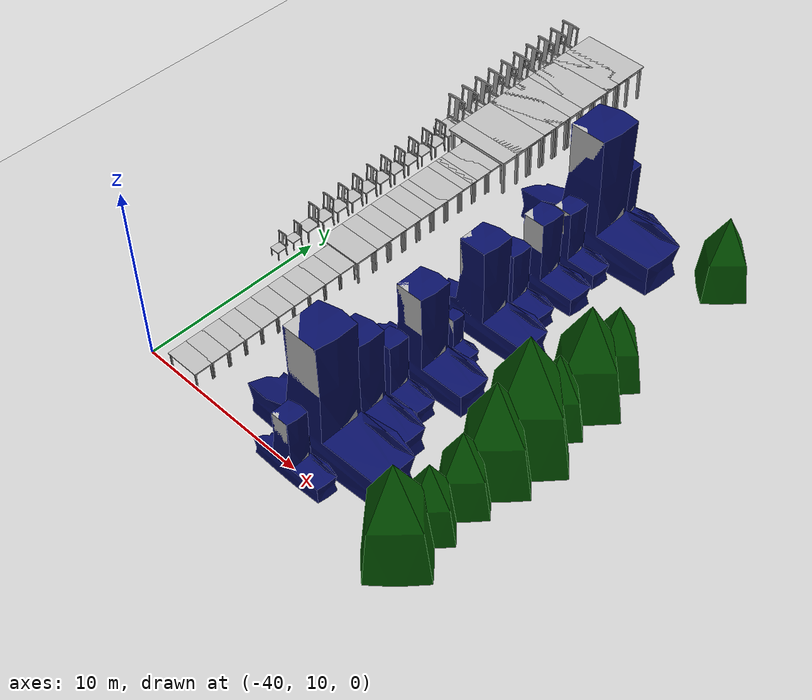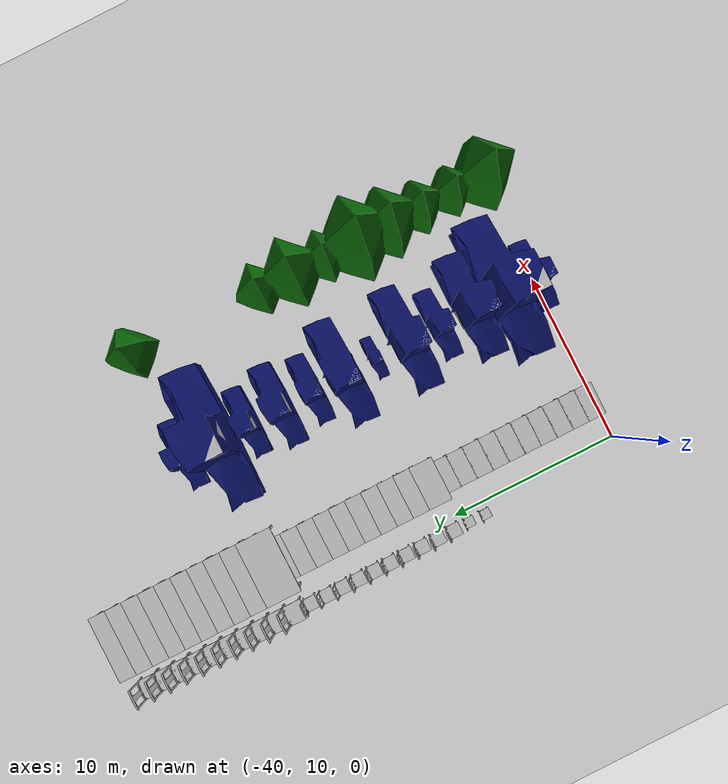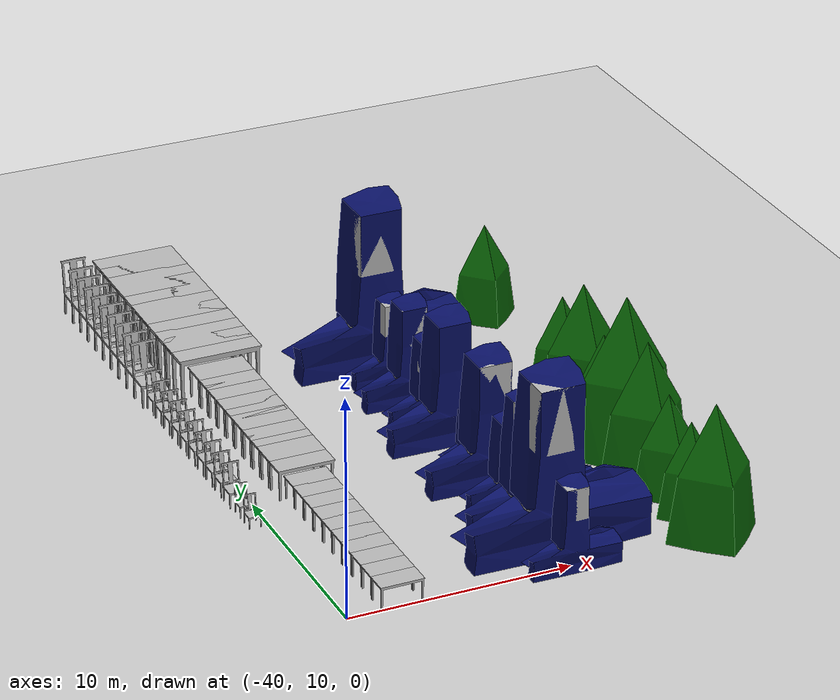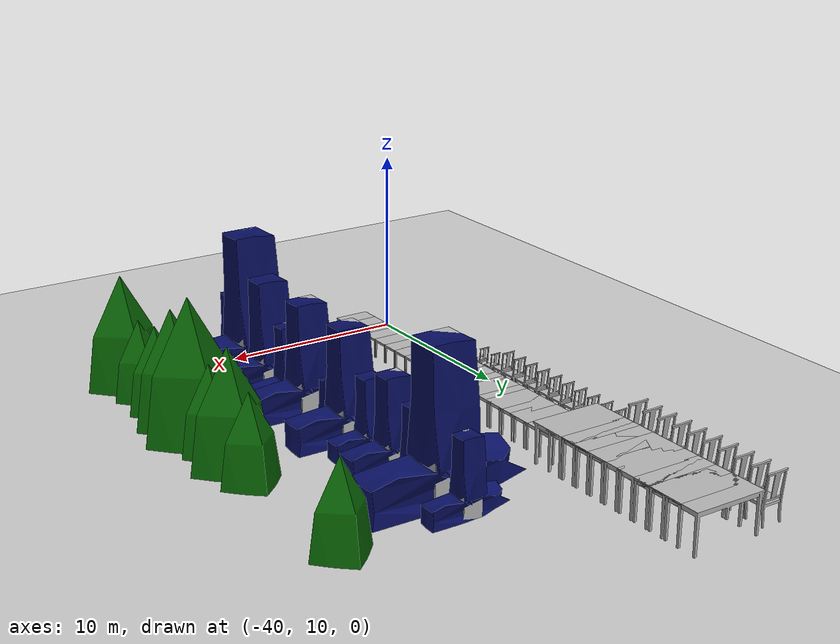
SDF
<sdf version="1.6">
 <world name="default">
  <model name="ground_plane">
   <static>1</static>
   <link name="link">
    <collision name="collision">
     <geometry><plane><normal>0 0 1</normal><size>1000 1000</size></plane></geometry>
     <surface>
      <contact><collide_bitmask>65535</collide_bitmask></contact>
      <friction><ode><mu>100</mu><mu2>50</mu2></ode></friction>
     </surface>
    </collision>
    <visual name="visual">
     <cast_shadows>0</cast_shadows>
     <geometry><plane><normal>0 0 1</normal><size>1000 1000</size></plane></geometry>
     <material>
      <script><uri>file://media/materials/scripts/gazebo.material</uri><name>Gazebo/Grey</name></script>
     </material>
    </visual>
   </link>
  </model>
  <model name="Simple Block_6">
   <pose>-30 22 0 0 -0 0</pose>
   <static>1</static>
   <link name="link">
    <collision name="collision">
     <geometry>
      <mesh><uri>model://Simple Block/meshes/Simple Block.dae</uri><scale>0.75 0.75 0.75</scale></mesh>
     </geometry>
    </collision>
    <visual name="visual">
     <geometry>
      <mesh><uri>model://Simple Block/meshes/Simple Block.dae</uri><scale>0.75 0.75 0.75</scale></mesh>
     </geometry>
    </visual>
   </link>
  </model>
  <model name="Simple Block_0">
   <pose>-30 10 0 0 -0 0</pose>
   <static>1</static>
   <link name="link">
    <collision name="collision">
     <geometry>
      <mesh><uri>model://Simple Block/meshes/Simple Block.dae</uri><scale>0.5 0.5 0.5</scale></mesh>
     </geometry>
    </collision>
    <visual name="visual">
     <geometry>
      <mesh><uri>model://Simple Block/meshes/Simple Block.dae</uri><scale>0.5 0.5 0.5</scale></mesh>
     </geometry>
    </visual>
   </link>
  </model>
  <model name="Simple Block_1">
   <pose>-30 12 0 0 -0 0</pose>
   <static>1</static>
   <link name="link">
    <collision name="collision">
     <geometry><mesh><uri>model://Simple Block/meshes/Simple Block.dae</uri></mesh></geometry>
    </collision>
    <visual name="visual">
     <geometry><mesh><uri>model://Simple Block/meshes/Simple Block.dae</uri></mesh></geometry>
    </visual>
   </link>
  </model>
  <model name="Simple Block_2">
   <pose>-30 14 0 0 -0 0</pose>
   <static>1</static>
   <link name="link">
    <collision name="collision">
     <geometry>
      <mesh><uri>model://Simple Block/meshes/Simple Block.dae</uri><scale>0.75 0.75 0.75</scale></mesh>
     </geometry>
    </collision>
    <visual name="visual">
     <geometry>
      <mesh><uri>model://Simple Block/meshes/Simple Block.dae</uri><scale>0.75 0.75 0.75</scale></mesh>
     </geometry>
    </visual>
   </link>
  </model>
  <model name="Simple Block_3">
   <pose>-30 16 0 0 -0 0</pose>
   <static>1</static>
   <link name="link">
    <collision name="collision">
     <geometry>
      <mesh><uri>model://Simple Block/meshes/Simple Block.dae</uri><scale>0.5 0.5 0.5</scale></mesh>
     </geometry>
    </collision>
    <visual name="visual">
     <geometry>
      <mesh><uri>model://Simple Block/meshes/Simple Block.dae</uri><scale>0.5 0.5 0.5</scale></mesh>
     </geometry>
    </visual>
   </link>
  </model>
  <model name="Simple Block_4">
   <pose>-30 18 0 0 -0 0</pose>
   <static>1</static>
   <link name="link">
    <collision name="collision">
     <geometry>
      <mesh><uri>model://Simple Block/meshes/Simple Block.dae</uri><scale>0.75 0.75 0.75</scale></mesh>
     </geometry>
    </collision>
    <visual name="visual">
     <geometry>
      <mesh><uri>model://Simple Block/meshes/Simple Block.dae</uri><scale>0.75 0.75 0.75</scale></mesh>
     </geometry>
    </visual>
   </link>
  </model>
  <model name="Simple Block_5">
   <pose>-30 20 0 0 -0 0</pose>
   <static>1</static>
   <link name="link">
    <collision name="collision">
     <geometry>
      <mesh><uri>model://Simple Block/meshes/Simple Block.dae</uri><scale>0.3 0.3 0.3</scale></mesh>
     </geometry>
    </collision>
    <visual name="visual">
     <geometry>
      <mesh><uri>model://Simple Block/meshes/Simple Block.dae</uri><scale>0.3 0.3 0.3</scale></mesh>
     </geometry>
    </visual>
   </link>
  </model>
  <model name="Simple Pyramid_11">
   <pose>-23.5 32 0 0 -0 0</pose>
   <static>1</static>
   <link name="link">
    <collision name="collision">
     <geometry>
      <mesh><uri>model://Simple Pyramid/meshes/Simple Pyramid.dae</uri><scale>0.75 0.75 0.75</scale></mesh>
     </geometry>
    </collision>
    <visual name="visual">
     <geometry>
      <mesh><uri>model://Simple Pyramid/meshes/Simple Pyramid.dae</uri><scale>0.75 0.75 0.75</scale></mesh>
     </geometry>
    </visual>
   </link>
  </model>
  <model name="Simple Pyramid_0">
   <pose>-23.5 10 0 0 -0 0</pose>
   <static>1</static>
   <link name="link">
    <collision name="collision">
     <geometry><mesh><uri>model://Simple Pyramid/meshes/Simple Pyramid.dae</uri></mesh></geometry>
    </collision>
    <visual name="visual">
     <geometry><mesh><uri>model://Simple Pyramid/meshes/Simple Pyramid.dae</uri></mesh></geometry>
    </visual>
   </link>
  </model>
  <model name="Simple Pyramid_1">
   <pose>-23.5 12 0 0 -0 0</pose>
   <static>1</static>
   <link name="link">
    <collision name="collision">
     <geometry>
      <mesh><uri>model://Simple Pyramid/meshes/Simple Pyramid.dae</uri><scale>0.7 0.7 0.7</scale></mesh>
     </geometry>
    </collision>
    <visual name="visual">
     <geometry>
      <mesh><uri>model://Simple Pyramid/meshes/Simple Pyramid.dae</uri><scale>0.7 0.7 0.7</scale></mesh>
     </geometry>
    </visual>
   </link>
  </model>
  <model name="Simple Pyramid_2">
   <pose>-23.5 14 0 0 -0 0</pose>
   <static>1</static>
   <link name="link">
    <collision name="collision">
     <geometry>
      <mesh><uri>model://Simple Pyramid/meshes/Simple Pyramid.dae</uri><scale>0.75 0.75 0.75</scale></mesh>
     </geometry>
    </collision>
    <visual name="visual">
     <geometry>
      <mesh><uri>model://Simple Pyramid/meshes/Simple Pyramid.dae</uri><scale>0.75 0.75 0.75</scale></mesh>
     </geometry>
    </visual>
   </link>
  </model>
  <model name="Simple Pyramid_3">
   <pose>-23.5 16 0 0 -0 0</pose>
   <static>1</static>
   <link name="link">
    <collision name="collision">
     <geometry><mesh><uri>model://Simple Pyramid/meshes/Simple Pyramid.dae</uri></mesh></geometry>
    </collision>
    <visual name="visual">
     <geometry><mesh><uri>model://Simple Pyramid/meshes/Simple Pyramid.dae</uri></mesh></geometry>
    </visual>
   </link>
  </model>
  <model name="Simple Pyramid_4">
   <pose>-23.5 18 0 0 -0 0</pose>
   <static>1</static>
   <link name="link">
    <collision name="collision">
     <geometry>
      <mesh><uri>model://Simple Pyramid/meshes/Simple Pyramid.dae</uri><scale>1.2 1.2 1.2</scale></mesh>
     </geometry>
    </collision>
    <visual name="visual">
     <geometry>
      <mesh><uri>model://Simple Pyramid/meshes/Simple Pyramid.dae</uri><scale>1.2 1.2 1.2</scale></mesh>
     </geometry>
    </visual>
   </link>
  </model>
  <model name="Simple Pyramid_5">
   <pose>-23.5 20 0 0 -0 0</pose>
   <static>1</static>
   <link name="link">
    <collision name="collision">
     <geometry>
      <mesh><uri>model://Simple Pyramid/meshes/Simple Pyramid.dae</uri><scale>0.75 0.75 0.75</scale></mesh>
     </geometry>
    </collision>
    <visual name="visual">
     <geometry>
      <mesh><uri>model://Simple Pyramid/meshes/Simple Pyramid.dae</uri><scale>0.75 0.75 0.75</scale></mesh>
     </geometry>
    </visual>
   </link>
  </model>
  <model name="Simple Pyramid_6">
   <pose>-23.5 22 0 0 -0 0</pose>
   <static>1</static>
   <link name="link">
    <collision name="collision">
     <geometry><mesh><uri>model://Simple Pyramid/meshes/Simple Pyramid.dae</uri></mesh></geometry>
    </collision>
    <visual name="visual">
     <geometry><mesh><uri>model://Simple Pyramid/meshes/Simple Pyramid.dae</uri></mesh></geometry>
    </visual>
   </link>
  </model>
  <model name="Simple Pyramid_7">
   <pose>-23.5 24 0 0 -0 0</pose>
   <static>1</static>
   <link name="link">
    <collision name="collision">
     <geometry>
      <mesh><uri>model://Simple Pyramid/meshes/Simple Pyramid.dae</uri><scale>0.75 0.75 0.75</scale></mesh>
     </geometry>
    </collision>
    <visual name="visual">
     <geometry>
      <mesh><uri>model://Simple Pyramid/meshes/Simple Pyramid.dae</uri><scale>0.75 0.75 0.75</scale></mesh>
     </geometry>
    </visual>
   </link>
  </model>
  <model name="Simple Block_11">
   <pose>-30 32 0 0 -0 0</pose>
   <static>1</static>
   <link name="link">
    <collision name="collision">
     <geometry>
      <mesh><uri>model://Simple Block/meshes/Simple Block.dae</uri><scale>0.5 0.5 0.5</scale></mesh>
     </geometry>
    </collision>
    <visual name="visual">
     <geometry>
      <mesh><uri>model://Simple Block/meshes/Simple Block.dae</uri><scale>0.5 0.5 0.5</scale></mesh>
     </geometry>
    </visual>
   </link>
  </model>
  <model name="Simple Block_7">
   <pose>-30 24 0 0 -0 0</pose>
   <static>1</static>
   <link name="link">
    <collision name="collision">
     <geometry>
      <mesh><uri>model://Simple Block/meshes/Simple Block.dae</uri><scale>0.5 0.5 0.5</scale></mesh>
     </geometry>
    </collision>
    <visual name="visual">
     <geometry>
      <mesh><uri>model://Simple Block/meshes/Simple Block.dae</uri><scale>0.5 0.5 0.5</scale></mesh>
     </geometry>
    </visual>
   </link>
  </model>
  <model name="Simple Block_8">
   <pose>-30 26 0 0 -0 0</pose>
   <static>1</static>
   <link name="link">
    <collision name="collision">
     <geometry>
      <mesh><uri>model://Simple Block/meshes/Simple Block.dae</uri><scale>0.6 0.6 0.6</scale></mesh>
     </geometry>
    </collision>
    <visual name="visual">
     <geometry>
      <mesh><uri>model://Simple Block/meshes/Simple Block.dae</uri><scale>0.6 0.6 0.6</scale></mesh>
     </geometry>
    </visual>
   </link>
  </model>
  <model name="Simple Block_9">
   <pose>-30 28 0 0 -0 0</pose>
   <static>1</static>
   <link name="link">
    <collision name="collision">
     <geometry>
      <mesh><uri>model://Simple Block/meshes/Simple Block.dae</uri><scale>0.5 0.5 0.5</scale></mesh>
     </geometry>
    </collision>
    <visual name="visual">
     <geometry>
      <mesh><uri>model://Simple Block/meshes/Simple Block.dae</uri><scale>0.5 0.5 0.5</scale></mesh>
     </geometry>
    </visual>
   </link>
  </model>
  <model name="Simple Block_10">
   <pose>-30 30 0 0 -0 0</pose>
   <static>1</static>
   <link name="link">
    <collision name="collision">
     <geometry><mesh><uri>model://Simple Block/meshes/Simple Block.dae</uri></mesh></geometry>
    </collision>
    <visual name="visual">
     <geometry><mesh><uri>model://Simple Block/meshes/Simple Block.dae</uri></mesh></geometry>
    </visual>
   </link>
  </model>
  <model name="table_low_poly_0">
   <static>1</static>
   <link name="link">
    <inertial>
     <mass>100</mass>
     <inertia><ixx>100</ixx><ixy>0</ixy><ixz>0</ixz><iyy>100</iyy><iyz>0</iyz><izz>100</izz></inertia>
    </inertial>
    <collision name="collision">
     <geometry><mesh><uri>model://table_low_poly/meshes/table.dae</uri><scale>1.5 1.5 1.5</scale></mesh></geometry>
    </collision>
    <visual name="visual">
     <geometry><mesh><uri>model://table_low_poly/meshes/table.dae</uri><scale>1.5 1.5 1.5</scale></mesh></geometry>
    </visual>
   </link>
   <pose>-37.5795 10.4619 0 0 -0 0</pose>
  </model>
  <model name="table_low_poly_1">
   <static>1</static>
   <link name="link">
    <inertial>
     <mass>100</mass>
     <inertia><ixx>100</ixx><ixy>0</ixy><ixz>0</ixz><iyy>100</iyy><iyz>0</iyz><izz>100</izz></inertia>
    </inertial>
    <collision name="collision">
     <geometry><mesh><uri>model://table_low_poly/meshes/table.dae</uri><scale>1.5 1.5 1.5</scale></mesh></geometry>
    </collision>
    <visual name="visual">
     <geometry><mesh><uri>model://table_low_poly/meshes/table.dae</uri><scale>1.5 1.5 1.5</scale></mesh></geometry>
    </visual>
   </link>
   <pose>-37.5795 11.4619 0 0 -0 0</pose>
  </model>
  <model name="table_low_poly_2">
   <static>1</static>
   <link name="link">
    <inertial>
     <mass>100</mass>
     <inertia><ixx>100</ixx><ixy>0</ixy><ixz>0</ixz><iyy>100</iyy><iyz>0</iyz><izz>100</izz></inertia>
    </inertial>
    <collision name="collision">
     <geometry><mesh><uri>model://table_low_poly/meshes/table.dae</uri><scale>1.5 1.5 1.5</scale></mesh></geometry>
    </collision>
    <visual name="visual">
     <geometry><mesh><uri>model://table_low_poly/meshes/table.dae</uri><scale>1.5 1.5 1.5</scale></mesh></geometry>
    </visual>
   </link>
   <pose>-37.5795 12.4619 0 0 -0 0</pose>
  </model>
  <model name="table_low_poly_3">
   <static>1</static>
   <link name="link">
    <inertial>
     <mass>100</mass>
     <inertia><ixx>100</ixx><ixy>0</ixy><ixz>0</ixz><iyy>100</iyy><iyz>0</iyz><izz>100</izz></inertia>
    </inertial>
    <collision name="collision">
     <geometry><mesh><uri>model://table_low_poly/meshes/table.dae</uri><scale>1.5 1.5 1.5</scale></mesh></geometry>
    </collision>
    <visual name="visual">
     <geometry><mesh><uri>model://table_low_poly/meshes/table.dae</uri><scale>1.5 1.5 1.5</scale></mesh></geometry>
    </visual>
   </link>
   <pose>-37.5795 13.4619 0 0 -0 0</pose>
  </model>
  <model name="table_low_poly_4">
   <static>1</static>
   <link name="link">
    <inertial>
     <mass>100</mass>
     <inertia><ixx>100</ixx><ixy>0</ixy><ixz>0</ixz><iyy>100</iyy><iyz>0</iyz><izz>100</izz></inertia>
    </inertial>
    <collision name="collision">
     <geometry><mesh><uri>model://table_low_poly/meshes/table.dae</uri><scale>1.5 1.5 1.5</scale></mesh></geometry>
    </collision>
    <visual name="visual">
     <geometry><mesh><uri>model://table_low_poly/meshes/table.dae</uri><scale>1.5 1.5 1.5</scale></mesh></geometry>
    </visual>
   </link>
   <pose>-37.5795 14.4619 0 0 -0 0</pose>
  </model>
  <model name="table_low_poly_5">
   <static>1</static>
   <link name="link">
    <inertial>
     <mass>100</mass>
     <inertia><ixx>100</ixx><ixy>0</ixy><ixz>0</ixz><iyy>100</iyy><iyz>0</iyz><izz>100</izz></inertia>
    </inertial>
    <collision name="collision">
     <geometry><mesh><uri>model://table_low_poly/meshes/table.dae</uri><scale>1.5 1.5 1.5</scale></mesh></geometry>
    </collision>
    <visual name="visual">
     <geometry><mesh><uri>model://table_low_poly/meshes/table.dae</uri><scale>1.5 1.5 1.5</scale></mesh></geometry>
    </visual>
   </link>
   <pose>-37.5795 15.4619 0 0 -0 0</pose>
  </model>
  <model name="table_low_poly_6">
   <static>1</static>
   <link name="link">
    <inertial>
     <mass>100</mass>
     <inertia><ixx>100</ixx><ixy>0</ixy><ixz>0</ixz><iyy>100</iyy><iyz>0</iyz><izz>100</izz></inertia>
    </inertial>
    <collision name="collision">
     <geometry><mesh><uri>model://table_low_poly/meshes/table.dae</uri><scale>1.5 1.5 1.5</scale></mesh></geometry>
    </collision>
    <visual name="visual">
     <geometry><mesh><uri>model://table_low_poly/meshes/table.dae</uri><scale>1.5 1.5 1.5</scale></mesh></geometry>
    </visual>
   </link>
   <pose>-37.5795 16.4619 0 0 -0 0</pose>
  </model>
  <model name="table_low_poly_7">
   <static>1</static>
   <link name="link">
    <inertial>
     <mass>100</mass>
     <inertia><ixx>100</ixx><ixy>0</ixy><ixz>0</ixz><iyy>100</iyy><iyz>0</iyz><izz>100</izz></inertia>
    </inertial>
    <collision name="collision">
     <geometry><mesh><uri>model://table_low_poly/meshes/table.dae</uri><scale>1.5 1.5 1.5</scale></mesh></geometry>
    </collision>
    <visual name="visual">
     <geometry><mesh><uri>model://table_low_poly/meshes/table.dae</uri><scale>1.5 1.5 1.5</scale></mesh></geometry>
    </visual>
   </link>
   <pose>-37.5795 17.4619 0 0 -0 0</pose>
  </model>
  <model name="table_low_poly_8">
   <static>1</static>
   <link name="link">
    <inertial>
     <mass>100</mass>
     <inertia><ixx>100</ixx><ixy>0</ixy><ixz>0</ixz><iyy>100</iyy><iyz>0</iyz><izz>100</izz></inertia>
    </inertial>
    <collision name="collision">
     <geometry><mesh><uri>model://table_low_poly/meshes/table.dae</uri><scale>1.5 1.5 1.5</scale></mesh></geometry>
    </collision>
    <visual name="visual">
     <geometry><mesh><uri>model://table_low_poly/meshes/table.dae</uri><scale>1.5 1.5 1.5</scale></mesh></geometry>
    </visual>
   </link>
   <pose>-37.5795 18.4619 0 0 -0 0</pose>
  </model>
  <model name="table_low_poly_9">
   <static>1</static>
   <link name="link">
    <inertial>
     <mass>100</mass>
     <inertia><ixx>100</ixx><ixy>0</ixy><ixz>0</ixz><iyy>100</iyy><iyz>0</iyz><izz>100</izz></inertia>
    </inertial>
    <collision name="collision">
     <geometry><mesh><uri>model://table_low_poly/meshes/table.dae</uri><scale>1.5 1.5 1.5</scale></mesh></geometry>
    </collision>
    <visual name="visual">
     <geometry><mesh><uri>model://table_low_poly/meshes/table.dae</uri><scale>1.5 1.5 1.5</scale></mesh></geometry>
    </visual>
   </link>
   <pose>-37.5795 19.4619 0 0 -0 0</pose>
  </model>
  <model name="table_low_poly_10">
   <static>1</static>
   <link name="link">
    <inertial>
     <mass>100</mass>
     <inertia><ixx>100</ixx><ixy>0</ixy><ixz>0</ixz><iyy>100</iyy><iyz>0</iyz><izz>100</izz></inertia>
    </inertial>
    <collision name="collision">
     <geometry><mesh><uri>model://table_low_poly/meshes/table.dae</uri><scale>2 2 2</scale></mesh></geometry>
    </collision>
    <visual name="visual">
     <geometry><mesh><uri>model://table_low_poly/meshes/table.dae</uri><scale>2 2 2</scale></mesh></geometry>
    </visual>
   </link>
   <pose>-37.5795 20.4619 0 0 -0 0</pose>
  </model>
  <model name="table_low_poly_11">
   <static>1</static>
   <link name="link">
    <inertial>
     <mass>100</mass>
     <inertia><ixx>100</ixx><ixy>0</ixy><ixz>0</ixz><iyy>100</iyy><iyz>0</iyz><izz>100</izz></inertia>
    </inertial>
    <collision name="collision">
     <geometry><mesh><uri>model://table_low_poly/meshes/table.dae</uri><scale>2 2 2</scale></mesh></geometry>
    </collision>
    <visual name="visual">
     <geometry><mesh><uri>model://table_low_poly/meshes/table.dae</uri><scale>2 2 2</scale></mesh></geometry>
    </visual>
   </link>
   <pose>-37.5795 21.4619 0 0 -0 0</pose>
  </model>
  <model name="table_low_poly_12">
   <static>1</static>
   <link name="link">
    <inertial>
     <mass>100</mass>
     <inertia><ixx>100</ixx><ixy>0</ixy><ixz>0</ixz><iyy>100</iyy><iyz>0</iyz><izz>100</izz></inertia>
    </inertial>
    <collision name="collision">
     <geometry><mesh><uri>model://table_low_poly/meshes/table.dae</uri><scale>2 2 2</scale></mesh></geometry>
    </collision>
    <visual name="visual">
     <geometry><mesh><uri>model://table_low_poly/meshes/table.dae</uri><scale>2 2 2</scale></mesh></geometry>
    </visual>
   </link>
   <pose>-37.5795 22.4619 0 0 -0 0</pose>
  </model>
  <model name="table_low_poly_13">
   <static>1</static>
   <link name="link">
    <inertial>
     <mass>100</mass>
     <inertia><ixx>100</ixx><ixy>0</ixy><ixz>0</ixz><iyy>100</iyy><iyz>0</iyz><izz>100</izz></inertia>
    </inertial>
    <collision name="collision">
     <geometry><mesh><uri>model://table_low_poly/meshes/table.dae</uri><scale>2 2 2</scale></mesh></geometry>
    </collision>
    <visual name="visual">
     <geometry><mesh><uri>model://table_low_poly/meshes/table.dae</uri><scale>2 2 2</scale></mesh></geometry>
    </visual>
   </link>
   <pose>-37.5795 23.4619 0 0 -0 0</pose>
  </model>
  <model name="table_low_poly_14">
   <static>1</static>
   <link name="link">
    <inertial>
     <mass>100</mass>
     <inertia><ixx>100</ixx><ixy>0</ixy><ixz>0</ixz><iyy>100</iyy><iyz>0</iyz><izz>100</izz></inertia>
    </inertial>
    <collision name="collision">
     <geometry><mesh><uri>model://table_low_poly/meshes/table.dae</uri><scale>2 2 2</scale></mesh></geometry>
    </collision>
    <visual name="visual">
     <geometry><mesh><uri>model://table_low_poly/meshes/table.dae</uri><scale>2 2 2</scale></mesh></geometry>
    </visual>
   </link>
   <pose>-37.5795 24.4619 0 0 -0 0</pose>
  </model>
  <model name="table_low_poly_15">
   <static>1</static>
   <link name="link">
    <inertial>
     <mass>100</mass>
     <inertia><ixx>100</ixx><ixy>0</ixy><ixz>0</ixz><iyy>100</iyy><iyz>0</iyz><izz>100</izz></inertia>
    </inertial>
    <collision name="collision">
     <geometry><mesh><uri>model://table_low_poly/meshes/table.dae</uri><scale>2 2 2</scale></mesh></geometry>
    </collision>
    <visual name="visual">
     <geometry><mesh><uri>model://table_low_poly/meshes/table.dae</uri><scale>2 2 2</scale></mesh></geometry>
    </visual>
   </link>
   <pose>-37.5795 25.4619 0 0 -0 0</pose>
  </model>
  <model name="table_low_poly_16">
   <static>1</static>
   <link name="link">
    <inertial>
     <mass>100</mass>
     <inertia><ixx>100</ixx><ixy>0</ixy><ixz>0</ixz><iyy>100</iyy><iyz>0</iyz><izz>100</izz></inertia>
    </inertial>
    <collision name="collision">
     <geometry><mesh><uri>model://table_low_poly/meshes/table.dae</uri><scale>2 2 2</scale></mesh></geometry>
    </collision>
    <visual name="visual">
     <geometry><mesh><uri>model://table_low_poly/meshes/table.dae</uri><scale>2 2 2</scale></mesh></geometry>
    </visual>
   </link>
   <pose>-37.5795 26.4619 0 0 -0 0</pose>
  </model>
  <model name="table_low_poly_17">
   <static>1</static>
   <link name="link">
    <inertial>
     <mass>100</mass>
     <inertia><ixx>100</ixx><ixy>0</ixy><ixz>0</ixz><iyy>100</iyy><iyz>0</iyz><izz>100</izz></inertia>
    </inertial>
    <collision name="collision">
     <geometry><mesh><uri>model://table_low_poly/meshes/table.dae</uri><scale>2 2 2</scale></mesh></geometry>
    </collision>
    <visual name="visual">
     <geometry><mesh><uri>model://table_low_poly/meshes/table.dae</uri><scale>2 2 2</scale></mesh></geometry>
    </visual>
   </link>
   <pose>-37.5795 27.4619 0 0 -0 0</pose>
  </model>
  <model name="table_low_poly_18">
   <static>1</static>
   <link name="link">
    <inertial>
     <mass>100</mass>
     <inertia><ixx>100</ixx><ixy>0</ixy><ixz>0</ixz><iyy>100</iyy><iyz>0</iyz><izz>100</izz></inertia>
    </inertial>
    <collision name="collision">
     <geometry><mesh><uri>model://table_low_poly/meshes/table.dae</uri><scale>2 2 2</scale></mesh></geometry>
    </collision>
    <visual name="visual">
     <geometry><mesh><uri>model://table_low_poly/meshes/table.dae</uri><scale>2 2 2</scale></mesh></geometry>
    </visual>
   </link>
   <pose>-37.5795 28.4619 0 0 -0 0</pose>
  </model>
  <model name="table_low_poly_19">
   <static>1</static>
   <link name="link">
    <inertial>
     <mass>100</mass>
     <inertia><ixx>100</ixx><ixy>0</ixy><ixz>0</ixz><iyy>100</iyy><iyz>0</iyz><izz>100</izz></inertia>
    </inertial>
    <collision name="collision">
     <geometry><mesh><uri>model://table_low_poly/meshes/table.dae</uri><scale>2 2 2</scale></mesh></geometry>
    </collision>
    <visual name="visual">
     <geometry><mesh><uri>model://table_low_poly/meshes/table.dae</uri><scale>2 2 2</scale></mesh></geometry>
    </visual>
   </link>
   <pose>-37.5795 29.4619 0 0 -0 0</pose>
  </model>
  <model name="table_low_poly_20">
   <static>1</static>
   <link name="link">
    <inertial>
     <mass>100</mass>
     <inertia><ixx>100</ixx><ixy>0</ixy><ixz>0</ixz><iyy>100</iyy><iyz>0</iyz><izz>100</izz></inertia>
    </inertial>
    <collision name="collision">
     <geometry><mesh><uri>model://table_low_poly/meshes/table.dae</uri><scale>3 3 3</scale></mesh></geometry>
    </collision>
    <visual name="visual">
     <geometry><mesh><uri>model://table_low_poly/meshes/table.dae</uri><scale>3 3 3</scale></mesh></geometry>
    </visual>
   </link>
   <pose>-37.5795 30.4619 0 0 -0 0</pose>
  </model>
  <model name="table_low_poly_21">
   <static>1</static>
   <link name="link">
    <inertial>
     <mass>100</mass>
     <inertia><ixx>100</ixx><ixy>0</ixy><ixz>0</ixz><iyy>100</iyy><iyz>0</iyz><izz>100</izz></inertia>
    </inertial>
    <collision name="collision">
     <geometry><mesh><uri>model://table_low_poly/meshes/table.dae</uri><scale>3 3 3</scale></mesh></geometry>
    </collision>
    <visual name="visual">
     <geometry><mesh><uri>model://table_low_poly/meshes/table.dae</uri><scale>3 3 3</scale></mesh></geometry>
    </visual>
   </link>
   <pose>-37.5795 31.4619 0 0 -0 0</pose>
  </model>
  <model name="table_low_poly_22">
   <static>1</static>
   <link name="link">
    <inertial>
     <mass>100</mass>
     <inertia><ixx>100</ixx><ixy>0</ixy><ixz>0</ixz><iyy>100</iyy><iyz>0</iyz><izz>100</izz></inertia>
    </inertial>
    <collision name="collision">
     <geometry><mesh><uri>model://table_low_poly/meshes/table.dae</uri><scale>3 3 3</scale></mesh></geometry>
    </collision>
    <visual name="visual">
     <geometry><mesh><uri>model://table_low_poly/meshes/table.dae</uri><scale>3 3 3</scale></mesh></geometry>
    </visual>
   </link>
   <pose>-37.5795 32.4619 0 0 -0 0</pose>
  </model>
  <model name="table_low_poly_23">
   <static>1</static>
   <link name="link">
    <inertial>
     <mass>100</mass>
     <inertia><ixx>100</ixx><ixy>0</ixy><ixz>0</ixz><iyy>100</iyy><iyz>0</iyz><izz>100</izz></inertia>
    </inertial>
    <collision name="collision">
     <geometry><mesh><uri>model://table_low_poly/meshes/table.dae</uri><scale>3 3 3</scale></mesh></geometry>
    </collision>
    <visual name="visual">
     <geometry><mesh><uri>model://table_low_poly/meshes/table.dae</uri><scale>3 3 3</scale></mesh></geometry>
    </visual>
   </link>
   <pose>-37.5795 33.4619 0 0 -0 0</pose>
  </model>
  <model name="table_low_poly_24">
   <static>1</static>
   <link name="link">
    <inertial>
     <mass>100</mass>
     <inertia><ixx>100</ixx><ixy>0</ixy><ixz>0</ixz><iyy>100</iyy><iyz>0</iyz><izz>100</izz></inertia>
    </inertial>
    <collision name="collision">
     <geometry><mesh><uri>model://table_low_poly/meshes/table.dae</uri><scale>3 3 3</scale></mesh></geometry>
    </collision>
    <visual name="visual">
     <geometry><mesh><uri>model://table_low_poly/meshes/table.dae</uri><scale>3 3 3</scale></mesh></geometry>
    </visual>
   </link>
   <pose>-37.5795 34.4619 0 0 -0 0</pose>
  </model>
  <model name="table_low_poly_25">
   <static>1</static>
   <link name="link">
    <inertial>
     <mass>100</mass>
     <inertia><ixx>100</ixx><ixy>0</ixy><ixz>0</ixz><iyy>100</iyy><iyz>0</iyz><izz>100</izz></inertia>
    </inertial>
    <collision name="collision">
     <geometry><mesh><uri>model://table_low_poly/meshes/table.dae</uri><scale>3 3 3</scale></mesh></geometry>
    </collision>
    <visual name="visual">
     <geometry><mesh><uri>model://table_low_poly/meshes/table.dae</uri><scale>3 3 3</scale></mesh></geometry>
    </visual>
   </link>
   <pose>-37.5795 35.4619 0 0 -0 0</pose>
  </model>
  <model name="table_low_poly_26">
   <static>1</static>
   <link name="link">
    <inertial>
     <mass>100</mass>
     <inertia><ixx>100</ixx><ixy>0</ixy><ixz>0</ixz><iyy>100</iyy><iyz>0</iyz><izz>100</izz></inertia>
    </inertial>
    <collision name="collision">
     <geometry><mesh><uri>model://table_low_poly/meshes/table.dae</uri><scale>3 3 3</scale></mesh></geometry>
    </collision>
    <visual name="visual">
     <geometry><mesh><uri>model://table_low_poly/meshes/table.dae</uri><scale>3 3 3</scale></mesh></geometry>
    </visual>
   </link>
   <pose>-37.5795 36.4619 0 0 -0 0</pose>
  </model>
  <model name="table_low_poly_27">
   <static>1</static>
   <link name="link">
    <inertial>
     <mass>100</mass>
     <inertia><ixx>100</ixx><ixy>0</ixy><ixz>0</ixz><iyy>100</iyy><iyz>0</iyz><izz>100</izz></inertia>
    </inertial>
    <collision name="collision">
     <geometry><mesh><uri>model://table_low_poly/meshes/table.dae</uri><scale>3 3 3</scale></mesh></geometry>
    </collision>
    <visual name="visual">
     <geometry><mesh><uri>model://table_low_poly/meshes/table.dae</uri><scale>3 3 3</scale></mesh></geometry>
    </visual>
   </link>
   <pose>-37.5795 37.4619 0 0 -0 0</pose>
  </model>
  <model name="table_low_poly_28">
   <static>1</static>
   <link name="link">
    <inertial>
     <mass>100</mass>
     <inertia><ixx>100</ixx><ixy>0</ixy><ixz>0</ixz><iyy>100</iyy><iyz>0</iyz><izz>100</izz></inertia>
    </inertial>
    <collision name="collision">
     <geometry><mesh><uri>model://table_low_poly/meshes/table.dae</uri><scale>3 3 3</scale></mesh></geometry>
    </collision>
    <visual name="visual">
     <geometry><mesh><uri>model://table_low_poly/meshes/table.dae</uri><scale>3 3 3</scale></mesh></geometry>
    </visual>
   </link>
   <pose>-37.5795 38.4619 0 0 -0 0</pose>
  </model>
  <model name="table_low_poly_29">
   <static>1</static>
   <link name="link">
    <inertial>
     <mass>100</mass>
     <inertia><ixx>100</ixx><ixy>0</ixy><ixz>0</ixz><iyy>100</iyy><iyz>0</iyz><izz>100</izz></inertia>
    </inertial>
    <collision name="collision">
     <geometry><mesh><uri>model://table_low_poly/meshes/table.dae</uri><scale>3 3 3</scale></mesh></geometry>
    </collision>
    <visual name="visual">
     <geometry><mesh><uri>model://table_low_poly/meshes/table.dae</uri><scale>3 3 3</scale></mesh></geometry>
    </visual>
   </link>
   <pose>-37.5795 39.4619 0 0 -0 0</pose>
  </model>
  <model name="chair_8">
   <static>1</static>
   <link name="link">
    <inertial>
     <mass>100</mass>
     <inertia><ixx>100</ixx><ixy>0</ixy><ixz>0</ixz><iyy>100</iyy><iyz>0</iyz><izz>100</izz></inertia>
    </inertial>
    <collision name="collision">
     <geometry><mesh><uri>model://chair/meshes/chair.dae</uri><scale>1.5 1.5 1.5</scale></mesh></geometry>
    </collision>
    <visual name="visual">
     <geometry><mesh><uri>model://chair/meshes/chair.dae</uri><scale>1.5 1.5 1.5</scale></mesh></geometry>
    </visual>
   </link>
   <pose>-40.6067 18.4313 0 0 -0 0</pose>
  </model>
  <model name="chair_9">
   <static>1</static>
   <link name="link">
    <inertial>
     <mass>100</mass>
     <inertia><ixx>100</ixx><ixy>0</ixy><ixz>0</ixz><iyy>100</iyy><iyz>0</iyz><izz>100</izz></inertia>
    </inertial>
    <collision name="collision">
     <geometry><mesh><uri>model://chair/meshes/chair.dae</uri><scale>1.5 1.5 1.5</scale></mesh></geometry>
    </collision>
    <visual name="visual">
     <geometry><mesh><uri>model://chair/meshes/chair.dae</uri><scale>1.5 1.5 1.5</scale></mesh></geometry>
    </visual>
   </link>
   <pose>-40.6067 19.4313 0 0 -0 0</pose>
  </model>
  <model name="chair_10">
   <static>1</static>
   <link name="link">
    <inertial>
     <mass>100</mass>
     <inertia><ixx>100</ixx><ixy>0</ixy><ixz>0</ixz><iyy>100</iyy><iyz>0</iyz><izz>100</izz></inertia>
    </inertial>
    <collision name="collision">
     <geometry><mesh><uri>model://chair/meshes/chair.dae</uri><scale>2 2 2</scale></mesh></geometry>
    </collision>
    <visual name="visual">
     <geometry><mesh><uri>model://chair/meshes/chair.dae</uri><scale>2 2 2</scale></mesh></geometry>
    </visual>
   </link>
   <pose>-40.6067 20.4313 0 0 -0 0</pose>
  </model>
  <model name="chair_11">
   <static>1</static>
   <link name="link">
    <inertial>
     <mass>100</mass>
     <inertia><ixx>100</ixx><ixy>0</ixy><ixz>0</ixz><iyy>100</iyy><iyz>0</iyz><izz>100</izz></inertia>
    </inertial>
    <collision name="collision">
     <geometry><mesh><uri>model://chair/meshes/chair.dae</uri><scale>2 2 2</scale></mesh></geometry>
    </collision>
    <visual name="visual">
     <geometry><mesh><uri>model://chair/meshes/chair.dae</uri><scale>2 2 2</scale></mesh></geometry>
    </visual>
   </link>
   <pose>-40.6067 21.4313 0 0 -0 0</pose>
  </model>
  <model name="chair_12">
   <static>1</static>
   <link name="link">
    <inertial>
     <mass>100</mass>
     <inertia><ixx>100</ixx><ixy>0</ixy><ixz>0</ixz><iyy>100</iyy><iyz>0</iyz><izz>100</izz></inertia>
    </inertial>
    <collision name="collision">
     <geometry><mesh><uri>model://chair/meshes/chair.dae</uri><scale>2 2 2</scale></mesh></geometry>
    </collision>
    <visual name="visual">
     <geometry><mesh><uri>model://chair/meshes/chair.dae</uri><scale>2 2 2</scale></mesh></geometry>
    </visual>
   </link>
   <pose>-40.6067 22.4313 0 0 -0 0</pose>
  </model>
  <model name="chair_13">
   <static>1</static>
   <link name="link">
    <inertial>
     <mass>100</mass>
     <inertia><ixx>100</ixx><ixy>0</ixy><ixz>0</ixz><iyy>100</iyy><iyz>0</iyz><izz>100</izz></inertia>
    </inertial>
    <collision name="collision">
     <geometry><mesh><uri>model://chair/meshes/chair.dae</uri><scale>2 2 2</scale></mesh></geometry>
    </collision>
    <visual name="visual">
     <geometry><mesh><uri>model://chair/meshes/chair.dae</uri><scale>2 2 2</scale></mesh></geometry>
    </visual>
   </link>
   <pose>-40.6067 23.4313 0 0 -0 0</pose>
  </model>
  <model name="chair_14">
   <static>1</static>
   <link name="link">
    <inertial>
     <mass>100</mass>
     <inertia><ixx>100</ixx><ixy>0</ixy><ixz>0</ixz><iyy>100</iyy><iyz>0</iyz><izz>100</izz></inertia>
    </inertial>
    <collision name="collision">
     <geometry><mesh><uri>model://chair/meshes/chair.dae</uri><scale>2 2 2</scale></mesh></geometry>
    </collision>
    <visual name="visual">
     <geometry><mesh><uri>model://chair/meshes/chair.dae</uri><scale>2 2 2</scale></mesh></geometry>
    </visual>
   </link>
   <pose>-40.6067 24.4313 0 0 -0 0</pose>
  </model>
  <model name="chair_15">
   <static>1</static>
   <link name="link">
    <inertial>
     <mass>100</mass>
     <inertia><ixx>100</ixx><ixy>0</ixy><ixz>0</ixz><iyy>100</iyy><iyz>0</iyz><izz>100</izz></inertia>
    </inertial>
    <collision name="collision">
     <geometry><mesh><uri>model://chair/meshes/chair.dae</uri><scale>2 2 2</scale></mesh></geometry>
    </collision>
    <visual name="visual">
     <geometry><mesh><uri>model://chair/meshes/chair.dae</uri><scale>2 2 2</scale></mesh></geometry>
    </visual>
   </link>
   <pose>-40.6067 25.4313 0 0 -0 0</pose>
  </model>
  <model name="chair_16">
   <static>1</static>
   <link name="link">
    <inertial>
     <mass>100</mass>
     <inertia><ixx>100</ixx><ixy>0</ixy><ixz>0</ixz><iyy>100</iyy><iyz>0</iyz><izz>100</izz></inertia>
    </inertial>
    <collision name="collision">
     <geometry><mesh><uri>model://chair/meshes/chair.dae</uri><scale>2 2 2</scale></mesh></geometry>
    </collision>
    <visual name="visual">
     <geometry><mesh><uri>model://chair/meshes/chair.dae</uri><scale>2 2 2</scale></mesh></geometry>
    </visual>
   </link>
   <pose>-40.6067 26.4313 0 0 -0 0</pose>
  </model>
  <model name="chair_17">
   <static>1</static>
   <link name="link">
    <inertial>
     <mass>100</mass>
     <inertia><ixx>100</ixx><ixy>0</ixy><ixz>0</ixz><iyy>100</iyy><iyz>0</iyz><izz>100</izz></inertia>
    </inertial>
    <collision name="collision">
     <geometry><mesh><uri>model://chair/meshes/chair.dae</uri><scale>2 2 2</scale></mesh></geometry>
    </collision>
    <visual name="visual">
     <geometry><mesh><uri>model://chair/meshes/chair.dae</uri><scale>2 2 2</scale></mesh></geometry>
    </visual>
   </link>
   <pose>-40.6067 27.4313 0 0 -0 0</pose>
  </model>
  <model name="chair_18">
   <static>1</static>
   <link name="link">
    <inertial>
     <mass>100</mass>
     <inertia><ixx>100</ixx><ixy>0</ixy><ixz>0</ixz><iyy>100</iyy><iyz>0</iyz><izz>100</izz></inertia>
    </inertial>
    <collision name="collision">
     <geometry><mesh><uri>model://chair/meshes/chair.dae</uri><scale>2 2 2</scale></mesh></geometry>
    </collision>
    <visual name="visual">
     <geometry><mesh><uri>model://chair/meshes/chair.dae</uri><scale>2 2 2</scale></mesh></geometry>
    </visual>
   </link>
   <pose>-40.6067 28.4313 0 0 -0 0</pose>
  </model>
  <model name="chair_19">
   <static>1</static>
   <link name="link">
    <inertial>
     <mass>100</mass>
     <inertia><ixx>100</ixx><ixy>0</ixy><ixz>0</ixz><iyy>100</iyy><iyz>0</iyz><izz>100</izz></inertia>
    </inertial>
    <collision name="collision">
     <geometry><mesh><uri>model://chair/meshes/chair.dae</uri><scale>2 2 2</scale></mesh></geometry>
    </collision>
    <visual name="visual">
     <geometry><mesh><uri>model://chair/meshes/chair.dae</uri><scale>2 2 2</scale></mesh></geometry>
    </visual>
   </link>
   <pose>-40.6067 29.4313 0 0 -0 0</pose>
  </model>
  <model name="chair_20">
   <static>1</static>
   <link name="link">
    <inertial>
     <mass>100</mass>
     <inertia><ixx>100</ixx><ixy>0</ixy><ixz>0</ixz><iyy>100</iyy><iyz>0</iyz><izz>100</izz></inertia>
    </inertial>
    <collision name="collision">
     <geometry><mesh><uri>model://chair/meshes/chair.dae</uri><scale>3 3 3</scale></mesh></geometry>
    </collision>
    <visual name="visual">
     <geometry><mesh><uri>model://chair/meshes/chair.dae</uri><scale>3 3 3</scale></mesh></geometry>
    </visual>
   </link>
   <pose>-40.6067 30.4313 0 0 -0 0</pose>
  </model>
  <model name="chair_21">
   <static>1</static>
   <link name="link">
    <inertial>
     <mass>100</mass>
     <inertia><ixx>100</ixx><ixy>0</ixy><ixz>0</ixz><iyy>100</iyy><iyz>0</iyz><izz>100</izz></inertia>
    </inertial>
    <collision name="collision">
     <geometry><mesh><uri>model://chair/meshes/chair.dae</uri><scale>3 3 3</scale></mesh></geometry>
    </collision>
    <visual name="visual">
     <geometry><mesh><uri>model://chair/meshes/chair.dae</uri><scale>3 3 3</scale></mesh></geometry>
    </visual>
   </link>
   <pose>-40.6067 31.4313 0 0 -0 0</pose>
  </model>
  <model name="chair_22">
   <static>1</static>
   <link name="link">
    <inertial>
     <mass>100</mass>
     <inertia><ixx>100</ixx><ixy>0</ixy><ixz>0</ixz><iyy>100</iyy><iyz>0</iyz><izz>100</izz></inertia>
    </inertial>
    <collision name="collision">
     <geometry><mesh><uri>model://chair/meshes/chair.dae</uri><scale>3 3 3</scale></mesh></geometry>
    </collision>
    <visual name="visual">
     <geometry><mesh><uri>model://chair/meshes/chair.dae</uri><scale>3 3 3</scale></mesh></geometry>
    </visual>
   </link>
   <pose>-40.6067 32.4313 0 0 -0 0</pose>
  </model>
  <model name="chair_23">
   <static>1</static>
   <link name="link">
    <inertial>
     <mass>100</mass>
     <inertia><ixx>100</ixx><ixy>0</ixy><ixz>0</ixz><iyy>100</iyy><iyz>0</iyz><izz>100</izz></inertia>
    </inertial>
    <collision name="collision">
     <geometry><mesh><uri>model://chair/meshes/chair.dae</uri><scale>3 3 3</scale></mesh></geometry>
    </collision>
    <visual name="visual">
     <geometry><mesh><uri>model://chair/meshes/chair.dae</uri><scale>3 3 3</scale></mesh></geometry>
    </visual>
   </link>
   <pose>-40.6067 33.4313 0 0 -0 0</pose>
  </model>
  <model name="chair_24">
   <static>1</static>
   <link name="link">
    <inertial>
     <mass>100</mass>
     <inertia><ixx>100</ixx><ixy>0</ixy><ixz>0</ixz><iyy>100</iyy><iyz>0</iyz><izz>100</izz></inertia>
    </inertial>
    <collision name="collision">
     <geometry><mesh><uri>model://chair/meshes/chair.dae</uri><scale>3 3 3</scale></mesh></geometry>
    </collision>
    <visual name="visual">
     <geometry><mesh><uri>model://chair/meshes/chair.dae</uri><scale>3 3 3</scale></mesh></geometry>
    </visual>
   </link>
   <pose>-40.6067 34.4313 0 0 -0 0</pose>
  </model>
  <model name="chair_25">
   <static>1</static>
   <link name="link">
    <inertial>
     <mass>100</mass>
     <inertia><ixx>100</ixx><ixy>0</ixy><ixz>0</ixz><iyy>100</iyy><iyz>0</iyz><izz>100</izz></inertia>
    </inertial>
    <collision name="collision">
     <geometry><mesh><uri>model://chair/meshes/chair.dae</uri><scale>3 3 3</scale></mesh></geometry>
    </collision>
    <visual name="visual">
     <geometry><mesh><uri>model://chair/meshes/chair.dae</uri><scale>3 3 3</scale></mesh></geometry>
    </visual>
   </link>
   <pose>-40.6067 35.4313 0 0 -0 0</pose>
  </model>
  <model name="chair_26">
   <static>1</static>
   <link name="link">
    <inertial>
     <mass>100</mass>
     <inertia><ixx>100</ixx><ixy>0</ixy><ixz>0</ixz><iyy>100</iyy><iyz>0</iyz><izz>100</izz></inertia>
    </inertial>
    <collision name="collision">
     <geometry><mesh><uri>model://chair/meshes/chair.dae</uri><scale>3 3 3</scale></mesh></geometry>
    </collision>
    <visual name="visual">
     <geometry><mesh><uri>model://chair/meshes/chair.dae</uri><scale>3 3 3</scale></mesh></geometry>
    </visual>
   </link>
   <pose>-40.6067 36.4313 0 0 -0 0</pose>
  </model>
  <model name="chair_27">
   <static>1</static>
   <link name="link">
    <inertial>
     <mass>100</mass>
     <inertia><ixx>100</ixx><ixy>0</ixy><ixz>0</ixz><iyy>100</iyy><iyz>0</iyz><izz>100</izz></inertia>
    </inertial>
    <collision name="collision">
     <geometry><mesh><uri>model://chair/meshes/chair.dae</uri><scale>3 3 3</scale></mesh></geometry>
    </collision>
    <visual name="visual">
     <geometry><mesh><uri>model://chair/meshes/chair.dae</uri><scale>3 3 3</scale></mesh></geometry>
    </visual>
   </link>
   <pose>-40.6067 37.4313 0 0 -0 0</pose>
  </model>
  <model name="chair_28">
   <static>1</static>
   <link name="link">
    <inertial>
     <mass>100</mass>
     <inertia><ixx>100</ixx><ixy>0</ixy><ixz>0</ixz><iyy>100</iyy><iyz>0</iyz><izz>100</izz></inertia>
    </inertial>
    <collision name="collision">
     <geometry><mesh><uri>model://chair/meshes/chair.dae</uri><scale>3 3 3</scale></mesh></geometry>
    </collision>
    <visual name="visual">
     <geometry><mesh><uri>model://chair/meshes/chair.dae</uri><scale>3 3 3</scale></mesh></geometry>
    </visual>
   </link>
   <pose>-40.6067 38.4313 0 0 -0 0</pose>
  </model>
  <model name="chair_29">
   <static>1</static>
   <link name="link">
    <inertial>
     <mass>100</mass>
     <inertia><ixx>100</ixx><ixy>0</ixy><ixz>0</ixz><iyy>100</iyy><iyz>0</iyz><izz>100</izz></inertia>
    </inertial>
    <collision name="collision">
     <geometry><mesh><uri>model://chair/meshes/chair.dae</uri><scale>3 3 3</scale></mesh></geometry>
    </collision>
    <visual name="visual">
     <geometry><mesh><uri>model://chair/meshes/chair.dae</uri><scale>3 3 3</scale></mesh></geometry>
    </visual>
   </link>
   <pose>-40.6067 39.4313 0 0 -0 0</pose>
  </model>
 </world>
</sdf>
